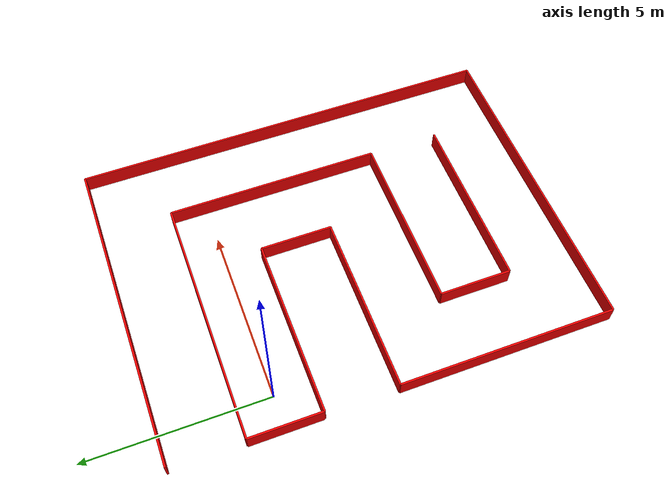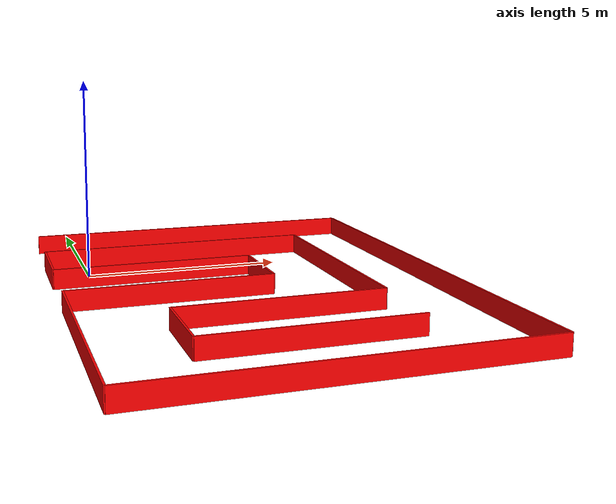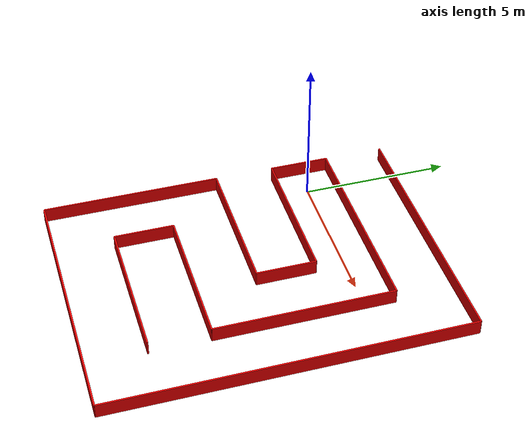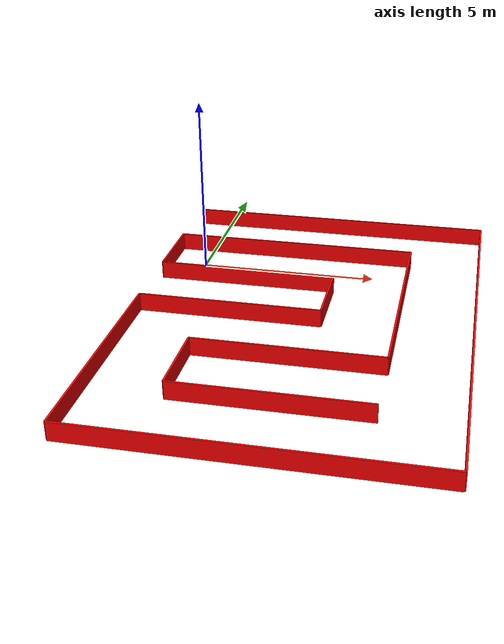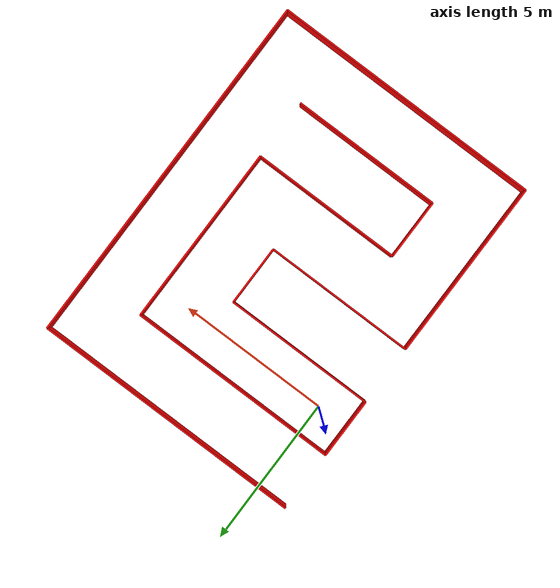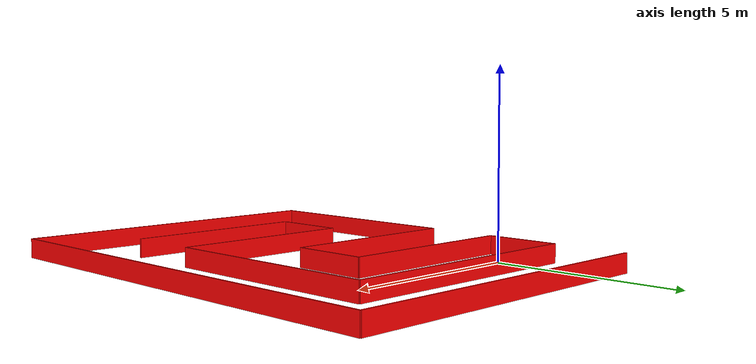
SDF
<sdf version='1.9'>
  <model name='castle'>
    <link name='base_link'>
      <inertial>
        <pose>2.807692307692308 -3.076923076923077 0.25 0 0 0</pose>
        <mass>6.5</mass>
        <inertia>
          <ixx>80.097684294871783</ixx>
          <ixy>-0.90384615384616041</ixy>
          <ixz>0</ixz>
          <iyy>51.228990384615351</iyy>
          <iyz>0</iyz>
          <izz>131.0558413461539</izz>
        </inertia>
      </inertial>
      <collision name='base_link_fixed_joint_lump__wall_10_collision'>
        <pose>3.5 -7 0.25 0 0 0</pose>
        <geometry>
          <box>
            <size>5 0.05 0.5</size>
          </box>
        </geometry>
      </collision>
      <collision name='base_link_fixed_joint_lump__wall_11_collision_1'>
        <pose>3.5 -9 0.25 0 0 0</pose>
        <geometry>
          <box>
            <size>9 0.05 0.5</size>
          </box>
        </geometry>
      </collision>
      <collision name='base_link_fixed_joint_lump__wall_12_collision_2'>
        <pose>8 -3 0.25 0 0 1.570796326794896</pose>
        <geometry>
          <box>
            <size>12 0.05 0.5</size>
          </box>
        </geometry>
      </collision>
      <collision name='base_link_fixed_joint_lump__wall_13_collision_3'>
        <pose>3.5 3 0.25 0 0 0</pose>
        <geometry>
          <box>
            <size>9 0.05 0.5</size>
          </box>
        </geometry>
      </collision>
      <collision name='base_link_fixed_joint_lump__wall_1_collision_4'>
        <pose>-1 0 0.25 0 0 1.570796326794896</pose>
        <geometry>
          <box>
            <size>2 0.05 0.5</size>
          </box>
        </geometry>
      </collision>
      <collision name='base_link_fixed_joint_lump__wall_2_collision_5'>
        <pose>2.5 1 0.25 0 0 0</pose>
        <geometry>
          <box>
            <size>7 0.05 0.5</size>
          </box>
        </geometry>
      </collision>
      <collision name='base_link_fixed_joint_lump__wall_3_collision_6'>
        <pose>1.5 -1 0.25 0 0 0</pose>
        <geometry>
          <box>
            <size>5 0.05 0.5</size>
          </box>
        </geometry>
      </collision>
      <collision name='base_link_fixed_joint_lump__wall_4_collision_7'>
        <pose>6 -2 0.25 0 0 1.570796326794896</pose>
        <geometry>
          <box>
            <size>6 0.05 0.5</size>
          </box>
        </geometry>
      </collision>
      <collision name='base_link_fixed_joint_lump__wall_5_collision_8'>
        <pose>4 -2 0.25 0 0 1.570796326794896</pose>
        <geometry>
          <box>
            <size>2 0.05 0.5</size>
          </box>
        </geometry>
      </collision>
      <collision name='base_link_fixed_joint_lump__wall_6_collision_9'>
        <pose>1.5 -3 0.25 0 0 0</pose>
        <geometry>
          <box>
            <size>5 0.05 0.5</size>
          </box>
        </geometry>
      </collision>
      <collision name='base_link_fixed_joint_lump__wall_7_collision_10'>
        <pose>3.5 -5 0.25 0 0 0</pose>
        <geometry>
          <box>
            <size>5 0.05 0.5</size>
          </box>
        </geometry>
      </collision>
      <collision name='base_link_fixed_joint_lump__wall_8_collision_11'>
        <pose>-1 -6 0.25 0 0 1.570796326794896</pose>
        <geometry>
          <box>
            <size>6 0.05 0.5</size>
          </box>
        </geometry>
      </collision>
      <collision name='base_link_fixed_joint_lump__wall_9_collision_12'>
        <pose>1 -6 0.25 0 0 1.570796326794896</pose>
        <geometry>
          <box>
            <size>2 0.05 0.5</size>
          </box>
        </geometry>
      </collision>
      <visual name='base_link_fixed_joint_lump__wall_10_visual'>
        <pose>3.5 -7 0.25 0 0 0</pose>
        <geometry>
          <box>
            <size>5 0.05 0.5</size>
          </box>
        </geometry>
        <material>
          <diffuse>1 0 0 1</diffuse>
          <ambient>1 0 0 1</ambient>
        </material>
      </visual>
      <visual name='base_link_fixed_joint_lump__wall_11_visual_1'>
        <pose>3.5 -9 0.25 0 0 0</pose>
        <geometry>
          <box>
            <size>9 0.05 0.5</size>
          </box>
        </geometry>
        <material>
          <diffuse>1 0 0 1</diffuse>
          <ambient>1 0 0 1</ambient>
        </material>
      </visual>
      <visual name='base_link_fixed_joint_lump__wall_12_visual_2'>
        <pose>8 -3 0.25 0 0 1.570796326794896</pose>
        <geometry>
          <box>
            <size>12 0.05 0.5</size>
          </box>
        </geometry>
        <material>
          <diffuse>1 0 0 1</diffuse>
          <ambient>1 0 0 1</ambient>
        </material>
      </visual>
      <visual name='base_link_fixed_joint_lump__wall_13_visual_3'>
        <pose>3.5 3 0.25 0 0 0</pose>
        <geometry>
          <box>
            <size>9 0.05 0.5</size>
          </box>
        </geometry>
        <material>
          <diffuse>1 0 0 1</diffuse>
          <ambient>1 0 0 1</ambient>
        </material>
      </visual>
      <visual name='base_link_fixed_joint_lump__wall_1_visual_4'>
        <pose>-1 0 0.25 0 0 1.570796326794896</pose>
        <geometry>
          <box>
            <size>2 0.05 0.5</size>
          </box>
        </geometry>
        <material>
          <diffuse>1 0 0 1</diffuse>
          <ambient>1 0 0 1</ambient>
        </material>
      </visual>
      <visual name='base_link_fixed_joint_lump__wall_2_visual_5'>
        <pose>2.5 1 0.25 0 0 0</pose>
        <geometry>
          <box>
            <size>7 0.05 0.5</size>
          </box>
        </geometry>
        <material>
          <diffuse>1 0 0 1</diffuse>
          <ambient>1 0 0 1</ambient>
        </material>
      </visual>
      <visual name='base_link_fixed_joint_lump__wall_3_visual_6'>
        <pose>1.5 -1 0.25 0 0 0</pose>
        <geometry>
          <box>
            <size>5 0.05 0.5</size>
          </box>
        </geometry>
        <material>
          <diffuse>1 0 0 1</diffuse>
          <ambient>1 0 0 1</ambient>
        </material>
      </visual>
      <visual name='base_link_fixed_joint_lump__wall_4_visual_7'>
        <pose>6 -2 0.25 0 0 1.570796326794896</pose>
        <geometry>
          <box>
            <size>6 0.05 0.5</size>
          </box>
        </geometry>
        <material>
          <diffuse>1 0 0 1</diffuse>
          <ambient>1 0 0 1</ambient>
        </material>
      </visual>
      <visual name='base_link_fixed_joint_lump__wall_5_visual_8'>
        <pose>4 -2 0.25 0 0 1.570796326794896</pose>
        <geometry>
          <box>
            <size>2 0.05 0.5</size>
          </box>
        </geometry>
        <material>
          <diffuse>1 0 0 1</diffuse>
          <ambient>1 0 0 1</ambient>
        </material>
      </visual>
      <visual name='base_link_fixed_joint_lump__wall_6_visual_9'>
        <pose>1.5 -3 0.25 0 0 0</pose>
        <geometry>
          <box>
            <size>5 0.05 0.5</size>
          </box>
        </geometry>
        <material>
          <diffuse>1 0 0 1</diffuse>
          <ambient>1 0 0 1</ambient>
        </material>
      </visual>
      <visual name='base_link_fixed_joint_lump__wall_7_visual_10'>
        <pose>3.5 -5 0.25 0 0 0</pose>
        <geometry>
          <box>
            <size>5 0.05 0.5</size>
          </box>
        </geometry>
        <material>
          <diffuse>1 0 0 1</diffuse>
          <ambient>1 0 0 1</ambient>
        </material>
      </visual>
      <visual name='base_link_fixed_joint_lump__wall_8_visual_11'>
        <pose>-1 -6 0.25 0 0 1.570796326794896</pose>
        <geometry>
          <box>
            <size>6 0.05 0.5</size>
          </box>
        </geometry>
        <material>
          <diffuse>1 0 0 1</diffuse>
          <ambient>1 0 0 1</ambient>
        </material>
      </visual>
      <visual name='base_link_fixed_joint_lump__wall_9_visual_12'>
        <pose>1 -6 0.25 0 0 1.570796326794896</pose>
        <geometry>
          <box>
            <size>2 0.05 0.5</size>
          </box>
        </geometry>
        <material>
          <diffuse>1 0 0 1</diffuse>
          <ambient>1 0 0 1</ambient>
        </material>
      </visual>
    </link>
    <frame name='wall_10_joint' attached_to='base_link'>
      <pose>3.5 -7 0.25 0 -0 0</pose>
    </frame>
    <frame name='wall_10' attached_to='wall_10_joint'/>
    <frame name='wall_11_joint' attached_to='base_link'>
      <pose>3.5 -9 0.25 0 -0 0</pose>
    </frame>
    <frame name='wall_11' attached_to='wall_11_joint'/>
    <frame name='wall_12_joint' attached_to='base_link'>
      <pose>8 -3 0.25 0 -0 1.5708</pose>
    </frame>
    <frame name='wall_12' attached_to='wall_12_joint'/>
    <frame name='wall_13_joint' attached_to='base_link'>
      <pose>3.5 3 0.25 0 -0 0</pose>
    </frame>
    <frame name='wall_13' attached_to='wall_13_joint'/>
    <frame name='wall_1_joint' attached_to='base_link'>
      <pose>-1 0 0.25 0 -0 1.5708</pose>
    </frame>
    <frame name='wall_1' attached_to='wall_1_joint'/>
    <frame name='wall_2_joint' attached_to='base_link'>
      <pose>2.5 1 0.25 0 -0 0</pose>
    </frame>
    <frame name='wall_2' attached_to='wall_2_joint'/>
    <frame name='wall_3_joint' attached_to='base_link'>
      <pose>1.5 -1 0.25 0 -0 0</pose>
    </frame>
    <frame name='wall_3' attached_to='wall_3_joint'/>
    <frame name='wall_4_joint' attached_to='base_link'>
      <pose>6 -2 0.25 0 -0 1.5708</pose>
    </frame>
    <frame name='wall_4' attached_to='wall_4_joint'/>
    <frame name='wall_5_joint' attached_to='base_link'>
      <pose>4 -2 0.25 0 -0 1.5708</pose>
    </frame>
    <frame name='wall_5' attached_to='wall_5_joint'/>
    <frame name='wall_6_joint' attached_to='base_link'>
      <pose>1.5 -3 0.25 0 -0 0</pose>
    </frame>
    <frame name='wall_6' attached_to='wall_6_joint'/>
    <frame name='wall_7_joint' attached_to='base_link'>
      <pose>3.5 -5 0.25 0 -0 0</pose>
    </frame>
    <frame name='wall_7' attached_to='wall_7_joint'/>
    <frame name='wall_8_joint' attached_to='base_link'>
      <pose>-1 -6 0.25 0 -0 1.5708</pose>
    </frame>
    <frame name='wall_8' attached_to='wall_8_joint'/>
    <frame name='wall_9_joint' attached_to='base_link'>
      <pose>1 -6 0.25 0 -0 1.5708</pose>
    </frame>
    <frame name='wall_9' attached_to='wall_9_joint'/>
  </model>
</sdf>
